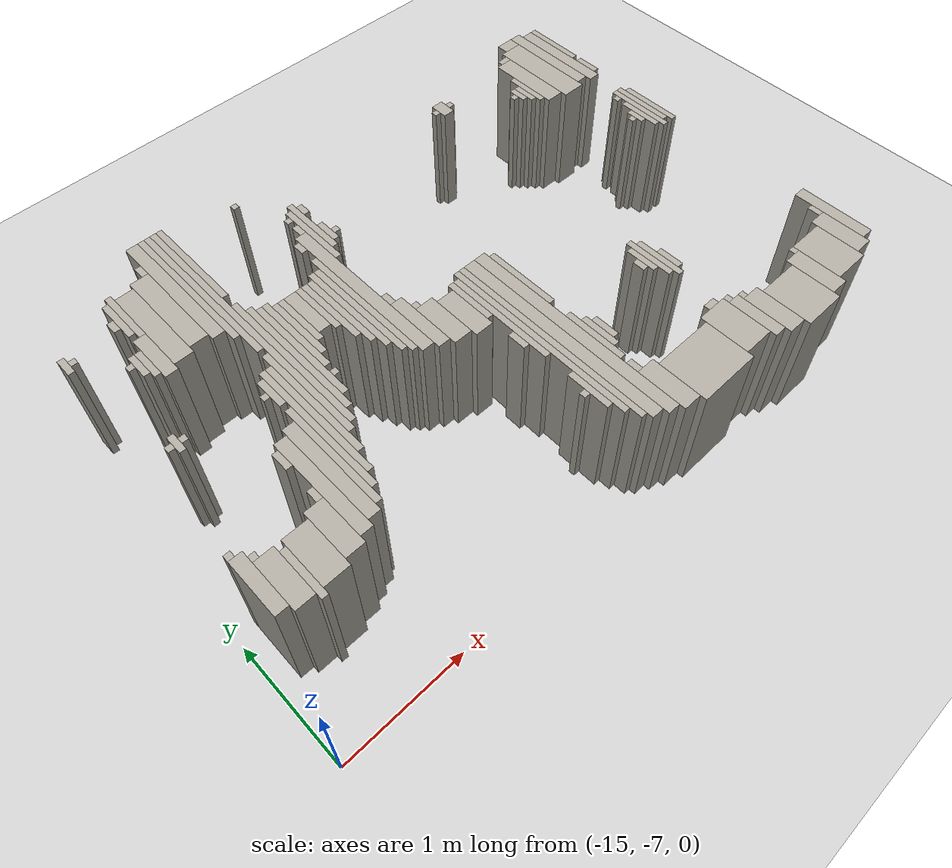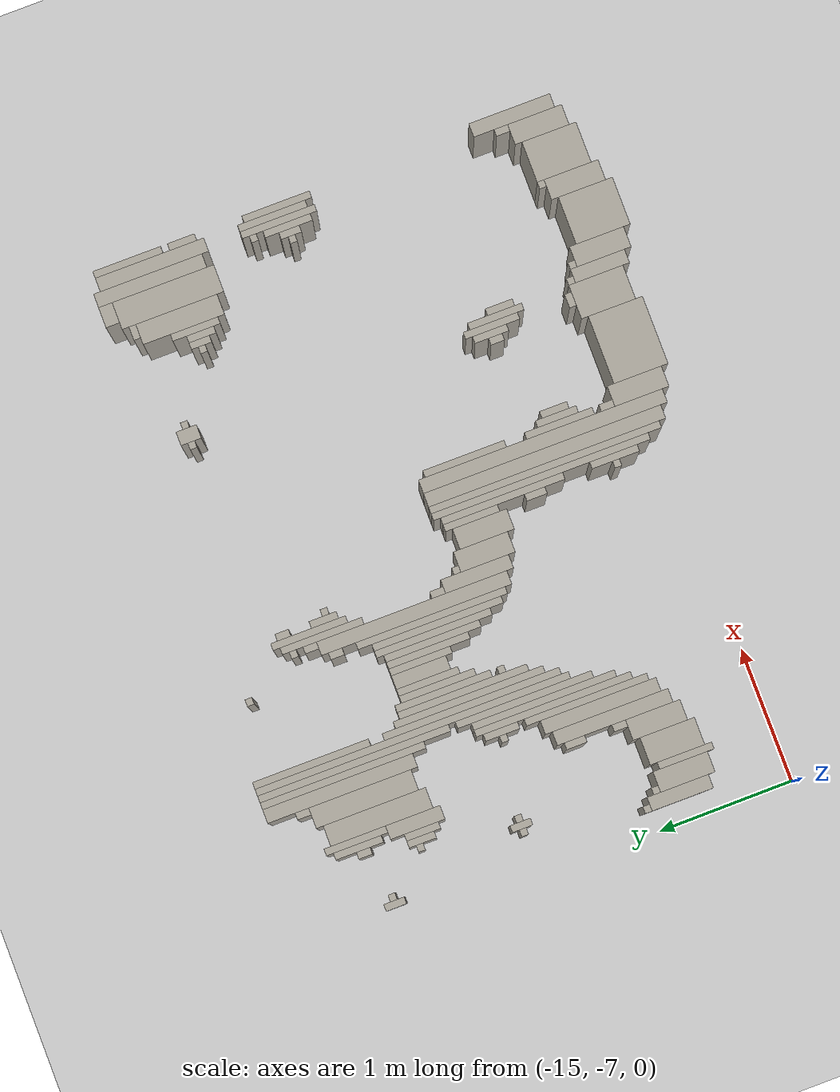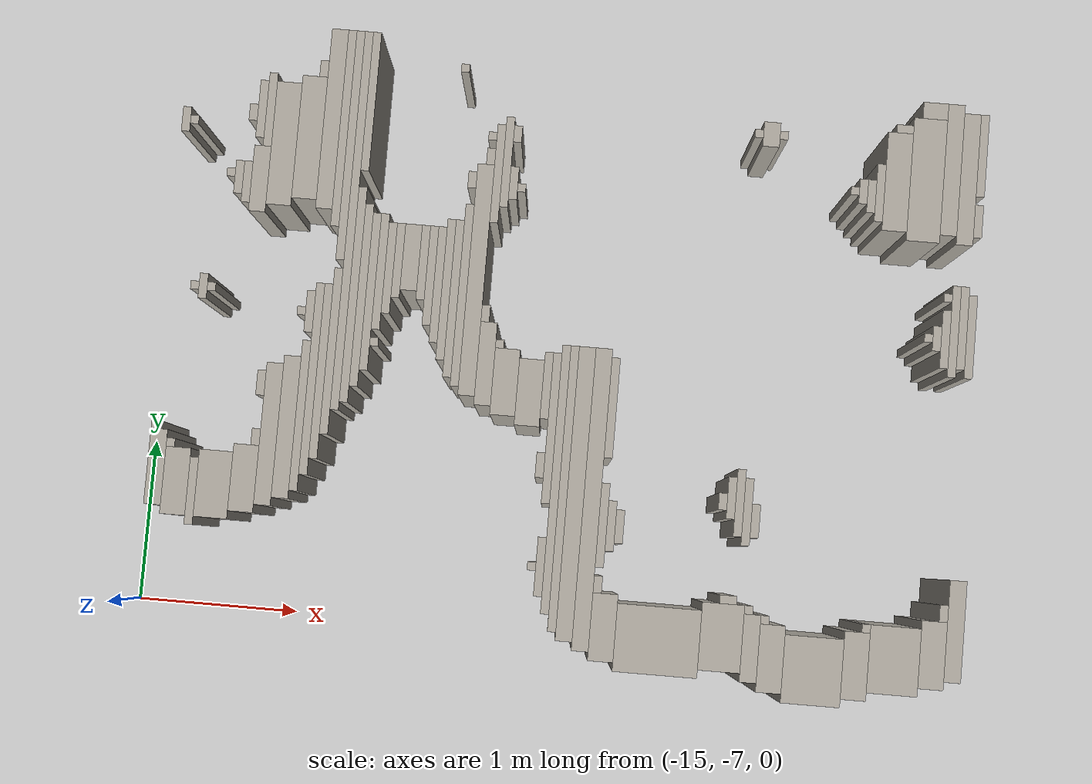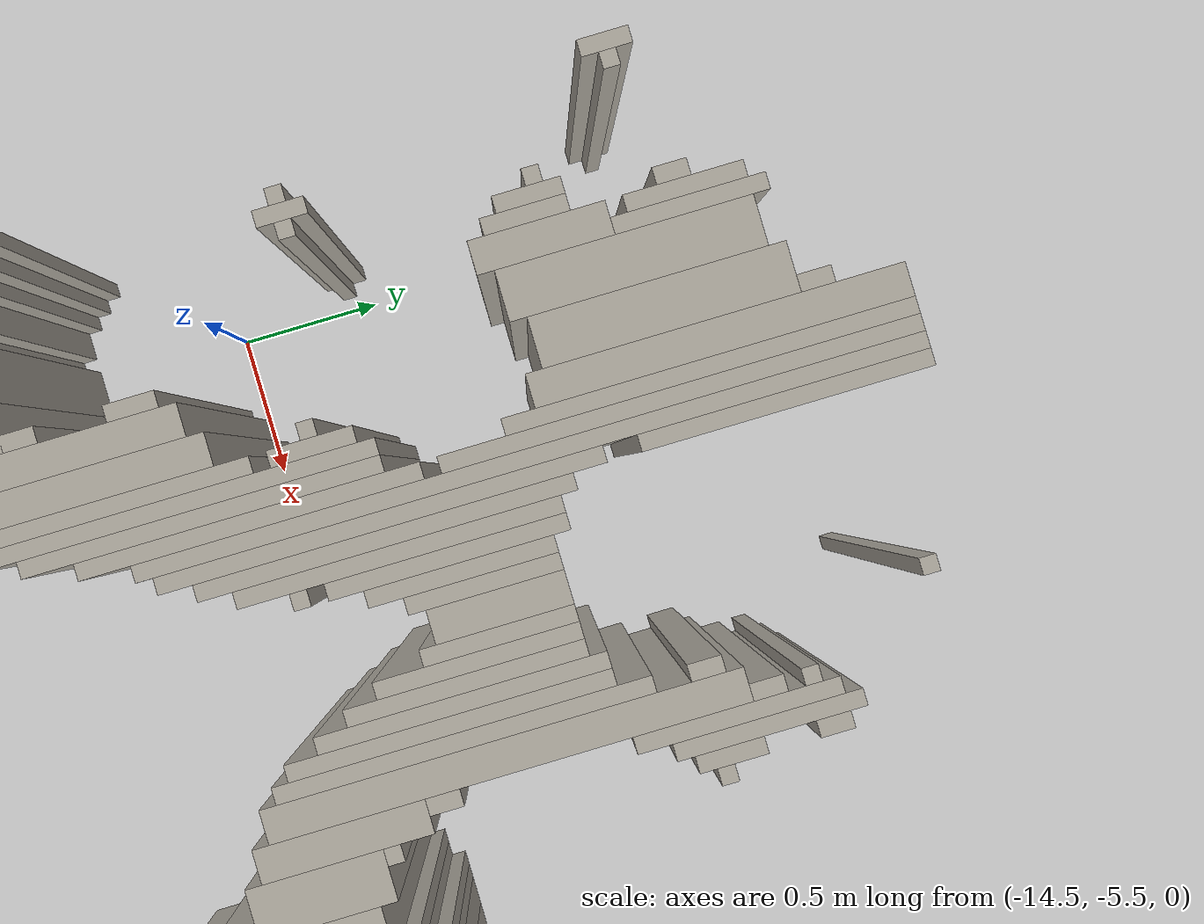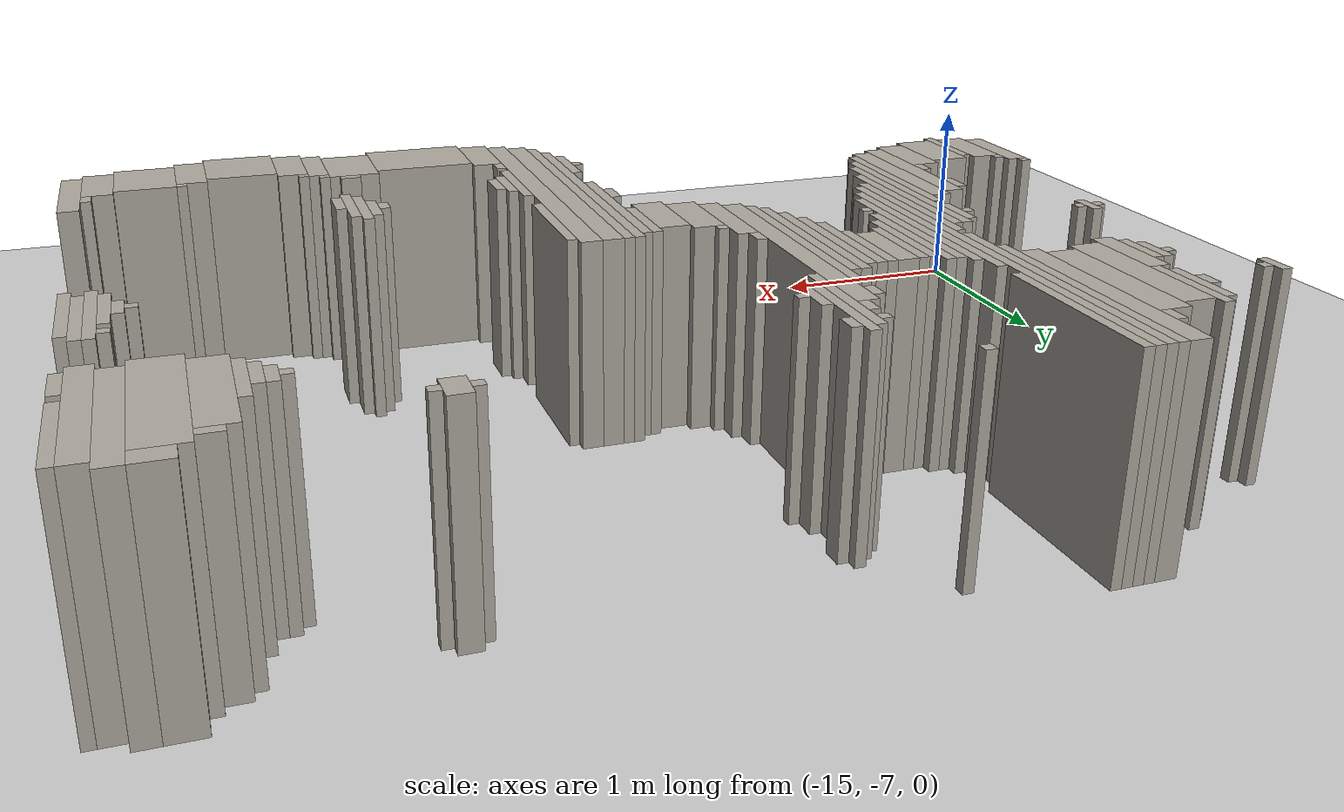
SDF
<sdf version="1.6">
 <world name="fr079_office">
  <include><uri>model://sun</uri></include>
  <include><uri>model://ground_plane</uri></include>
  <model name="fr079_office_walls">
   <static>true</static>
   <link name="w0028">
    <pose>-10.823 -7.056 0.500 0 0 0</pose>
    <collision name="c"><geometry><box><size>0.350 0.400 1.000</size></box></geometry></collision>
    <visual name="v">
     <geometry><box><size>0.350 0.400 1.000</size></box></geometry>
     <material><ambient>0.68 0.66 0.62 1</ambient><diffuse>0.68 0.66 0.62 1</diffuse></material>
    </visual>
   </link>
   <link name="w0052">
    <pose>-11.073 -7.006 0.500 0 0 0</pose>
    <collision name="c"><geometry><box><size>0.150 0.400 1.000</size></box></geometry></collision>
    <visual name="v">
     <geometry><box><size>0.150 0.400 1.000</size></box></geometry>
     <material><ambient>0.68 0.66 0.62 1</ambient><diffuse>0.68 0.66 0.62 1</diffuse></material>
    </visual>
   </link>
   <link name="w0053">
    <pose>-10.573 -7.006 0.500 0 0 0</pose>
    <collision name="c"><geometry><box><size>0.150 0.400 1.000</size></box></geometry></collision>
    <visual name="v">
     <geometry><box><size>0.150 0.400 1.000</size></box></geometry>
     <material><ambient>0.68 0.66 0.62 1</ambient><diffuse>0.68 0.66 0.62 1</diffuse></material>
    </visual>
   </link>
   <link name="w0078">
    <pose>-11.748 -6.956 0.500 0 0 0</pose>
    <collision name="c"><geometry><box><size>0.500 0.400 1.000</size></box></geometry></collision>
    <visual name="v">
     <geometry><box><size>0.500 0.400 1.000</size></box></geometry>
     <material><ambient>0.68 0.66 0.62 1</ambient><diffuse>0.68 0.66 0.62 1</diffuse></material>
    </visual>
   </link>
   <link name="w0079">
    <pose>-11.198 -6.956 0.500 0 0 0</pose>
    <collision name="c"><geometry><box><size>0.100 0.400 1.000</size></box></geometry></collision>
    <visual name="v">
     <geometry><box><size>0.100 0.400 1.000</size></box></geometry>
     <material><ambient>0.68 0.66 0.62 1</ambient><diffuse>0.68 0.66 0.62 1</diffuse></material>
    </visual>
   </link>
   <link name="w0080">
    <pose>-10.348 -6.956 0.500 0 0 0</pose>
    <collision name="c"><geometry><box><size>0.300 0.400 1.000</size></box></geometry></collision>
    <visual name="v">
     <geometry><box><size>0.300 0.400 1.000</size></box></geometry>
     <material><ambient>0.68 0.66 0.62 1</ambient><diffuse>0.68 0.66 0.62 1</diffuse></material>
    </visual>
   </link>
   <link name="w0103">
    <pose>-12.073 -6.906 0.500 0 0 0</pose>
    <collision name="c"><geometry><box><size>0.150 0.400 1.000</size></box></geometry></collision>
    <visual name="v">
     <geometry><box><size>0.150 0.400 1.000</size></box></geometry>
     <material><ambient>0.68 0.66 0.62 1</ambient><diffuse>0.68 0.66 0.62 1</diffuse></material>
    </visual>
   </link>
   <link name="w0104">
    <pose>-11.373 -6.906 0.500 0 0 0</pose>
    <collision name="c"><geometry><box><size>0.250 0.400 1.000</size></box></geometry></collision>
    <visual name="v">
     <geometry><box><size>0.250 0.400 1.000</size></box></geometry>
     <material><ambient>0.68 0.66 0.62 1</ambient><diffuse>0.68 0.66 0.62 1</diffuse></material>
    </visual>
   </link>
   <link name="w0105">
    <pose>-10.123 -6.906 0.500 0 0 0</pose>
    <collision name="c"><geometry><box><size>0.150 0.400 1.000</size></box></geometry></collision>
    <visual name="v">
     <geometry><box><size>0.150 0.400 1.000</size></box></geometry>
     <material><ambient>0.68 0.66 0.62 1</ambient><diffuse>0.68 0.66 0.62 1</diffuse></material>
    </visual>
   </link>
   <link name="w0125">
    <pose>-12.198 -6.156 0.500 0 0 0</pose>
    <collision name="c"><geometry><box><size>0.100 1.800 1.000</size></box></geometry></collision>
    <visual name="v">
     <geometry><box><size>0.100 1.800 1.000</size></box></geometry>
     <material><ambient>0.68 0.66 0.62 1</ambient><diffuse>0.68 0.66 0.62 1</diffuse></material>
    </visual>
   </link>
   <link name="w0126">
    <pose>-9.998 -6.756 0.500 0 0 0</pose>
    <collision name="c"><geometry><box><size>0.100 0.600 1.000</size></box></geometry></collision>
    <visual name="v">
     <geometry><box><size>0.100 0.600 1.000</size></box></geometry>
     <material><ambient>0.68 0.66 0.62 1</ambient><diffuse>0.68 0.66 0.62 1</diffuse></material>
    </visual>
   </link>
   <link name="w0137">
    <pose>-12.298 -6.131 0.500 0 0 0</pose>
    <collision name="c"><geometry><box><size>0.100 1.750 1.000</size></box></geometry></collision>
    <visual name="v">
     <geometry><box><size>0.100 1.750 1.000</size></box></geometry>
     <material><ambient>0.68 0.66 0.62 1</ambient><diffuse>0.68 0.66 0.62 1</diffuse></material>
    </visual>
   </link>
   <link name="w0152">
    <pose>-12.373 -6.106 0.500 0 0 0</pose>
    <collision name="c"><geometry><box><size>0.050 1.700 1.000</size></box></geometry></collision>
    <visual name="v">
     <geometry><box><size>0.050 1.700 1.000</size></box></geometry>
     <material><ambient>0.68 0.66 0.62 1</ambient><diffuse>0.68 0.66 0.62 1</diffuse></material>
    </visual>
   </link>
   <link name="w0179">
    <pose>-12.423 -6.056 0.500 0 0 0</pose>
    <collision name="c"><geometry><box><size>0.050 1.600 1.000</size></box></geometry></collision>
    <visual name="v">
     <geometry><box><size>0.050 1.600 1.000</size></box></geometry>
     <material><ambient>0.68 0.66 0.62 1</ambient><diffuse>0.68 0.66 0.62 1</diffuse></material>
    </visual>
   </link>
   <link name="w0198">
    <pose>-11.123 -6.781 0.500 0 0 0</pose>
    <collision name="c"><geometry><box><size>0.050 0.050 1.000</size></box></geometry></collision>
    <visual name="v">
     <geometry><box><size>0.050 0.050 1.000</size></box></geometry>
     <material><ambient>0.68 0.66 0.62 1</ambient><diffuse>0.68 0.66 0.62 1</diffuse></material>
    </visual>
   </link>
   <link name="w0199">
    <pose>-10.523 -6.781 0.500 0 0 0</pose>
    <collision name="c"><geometry><box><size>0.050 0.050 1.000</size></box></geometry></collision>
    <visual name="v">
     <geometry><box><size>0.050 0.050 1.000</size></box></geometry>
     <material><ambient>0.68 0.66 0.62 1</ambient><diffuse>0.68 0.66 0.62 1</diffuse></material>
    </visual>
   </link>
   <link name="w0212">
    <pose>-12.473 -6.581 0.500 0 0 0</pose>
    <collision name="c"><geometry><box><size>0.050 0.350 1.000</size></box></geometry></collision>
    <visual name="v">
     <geometry><box><size>0.050 0.350 1.000</size></box></geometry>
     <material><ambient>0.68 0.66 0.62 1</ambient><diffuse>0.68 0.66 0.62 1</diffuse></material>
    </visual>
   </link>
   <link name="w0213">
    <pose>-11.223 -6.731 0.500 0 0 0</pose>
    <collision name="c"><geometry><box><size>0.050 0.050 1.000</size></box></geometry></collision>
    <visual name="v">
     <geometry><box><size>0.050 0.050 1.000</size></box></geometry>
     <material><ambient>0.68 0.66 0.62 1</ambient><diffuse>0.68 0.66 0.62 1</diffuse></material>
    </visual>
   </link>
   <link name="w0232">
    <pose>-12.123 -6.656 0.500 0 0 0</pose>
    <collision name="c"><geometry><box><size>0.050 0.100 1.000</size></box></geometry></collision>
    <visual name="v">
     <geometry><box><size>0.050 0.100 1.000</size></box></geometry>
     <material><ambient>0.68 0.66 0.62 1</ambient><diffuse>0.68 0.66 0.62 1</diffuse></material>
    </visual>
   </link>
   <link name="w0233">
    <pose>-11.348 -6.681 0.500 0 0 0</pose>
    <collision name="c"><geometry><box><size>0.100 0.050 1.000</size></box></geometry></collision>
    <visual name="v">
     <geometry><box><size>0.100 0.050 1.000</size></box></geometry>
     <material><ambient>0.68 0.66 0.62 1</ambient><diffuse>0.68 0.66 0.62 1</diffuse></material>
    </visual>
   </link>
   <link name="w0234">
    <pose>-10.073 -6.656 0.500 0 0 0</pose>
    <collision name="c"><geometry><box><size>0.050 0.100 1.000</size></box></geometry></collision>
    <visual name="v">
     <geometry><box><size>0.050 0.100 1.000</size></box></geometry>
     <material><ambient>0.68 0.66 0.62 1</ambient><diffuse>0.68 0.66 0.62 1</diffuse></material>
    </visual>
   </link>
   <link name="w0255">
    <pose>-12.523 -6.581 0.500 0 0 0</pose>
    <collision name="c"><geometry><box><size>0.050 0.050 1.000</size></box></geometry></collision>
    <visual name="v">
     <geometry><box><size>0.050 0.050 1.000</size></box></geometry>
     <material><ambient>0.68 0.66 0.62 1</ambient><diffuse>0.68 0.66 0.62 1</diffuse></material>
    </visual>
   </link>
   <link name="w0269">
    <pose>-12.123 -6.306 0.500 0 0 0</pose>
    <collision name="c"><geometry><box><size>0.050 0.500 1.000</size></box></geometry></collision>
    <visual name="v">
     <geometry><box><size>0.050 0.500 1.000</size></box></geometry>
     <material><ambient>0.68 0.66 0.62 1</ambient><diffuse>0.68 0.66 0.62 1</diffuse></material>
    </visual>
   </link>
   <link name="w0282">
    <pose>-14.573 -6.306 0.500 0 0 0</pose>
    <collision name="c"><geometry><box><size>0.050 0.400 1.000</size></box></geometry></collision>
    <visual name="v">
     <geometry><box><size>0.050 0.400 1.000</size></box></geometry>
     <material><ambient>0.68 0.66 0.62 1</ambient><diffuse>0.68 0.66 0.62 1</diffuse></material>
    </visual>
   </link>
   <link name="w0297">
    <pose>-14.673 -6.256 0.500 0 0 0</pose>
    <collision name="c"><geometry><box><size>0.150 0.400 1.000</size></box></geometry></collision>
    <visual name="v">
     <geometry><box><size>0.150 0.400 1.000</size></box></geometry>
     <material><ambient>0.68 0.66 0.62 1</ambient><diffuse>0.68 0.66 0.62 1</diffuse></material>
    </visual>
   </link>
   <link name="w0298">
    <pose>-14.448 -6.256 0.500 0 0 0</pose>
    <collision name="c"><geometry><box><size>0.200 0.400 1.000</size></box></geometry></collision>
    <visual name="v">
     <geometry><box><size>0.200 0.400 1.000</size></box></geometry>
     <material><ambient>0.68 0.66 0.62 1</ambient><diffuse>0.68 0.66 0.62 1</diffuse></material>
    </visual>
   </link>
   <link name="w0299">
    <pose>-12.073 -6.306 0.500 0 0 0</pose>
    <collision name="c"><geometry><box><size>0.050 0.300 1.000</size></box></geometry></collision>
    <visual name="v">
     <geometry><box><size>0.050 0.300 1.000</size></box></geometry>
     <material><ambient>0.68 0.66 0.62 1</ambient><diffuse>0.68 0.66 0.62 1</diffuse></material>
    </visual>
   </link>
   <link name="w0315">
    <pose>-14.798 -6.181 0.500 0 0 0</pose>
    <collision name="c"><geometry><box><size>0.100 0.450 1.000</size></box></geometry></collision>
    <visual name="v">
     <geometry><box><size>0.100 0.450 1.000</size></box></geometry>
     <material><ambient>0.68 0.66 0.62 1</ambient><diffuse>0.68 0.66 0.62 1</diffuse></material>
    </visual>
   </link>
   <link name="w0316">
    <pose>-14.273 -6.206 0.500 0 0 0</pose>
    <collision name="c"><geometry><box><size>0.150 0.400 1.000</size></box></geometry></collision>
    <visual name="v">
     <geometry><box><size>0.150 0.400 1.000</size></box></geometry>
     <material><ambient>0.68 0.66 0.62 1</ambient><diffuse>0.68 0.66 0.62 1</diffuse></material>
    </visual>
   </link>
   <link name="w0317">
    <pose>-12.023 -6.306 0.500 0 0 0</pose>
    <collision name="c"><geometry><box><size>0.050 0.200 1.000</size></box></geometry></collision>
    <visual name="v">
     <geometry><box><size>0.050 0.200 1.000</size></box></geometry>
     <material><ambient>0.68 0.66 0.62 1</ambient><diffuse>0.68 0.66 0.62 1</diffuse></material>
    </visual>
   </link>
   <link name="w0336">
    <pose>-14.148 -5.931 0.500 0 0 0</pose>
    <collision name="c"><geometry><box><size>0.100 0.850 1.000</size></box></geometry></collision>
    <visual name="v">
     <geometry><box><size>0.100 0.850 1.000</size></box></geometry>
     <material><ambient>0.68 0.66 0.62 1</ambient><diffuse>0.68 0.66 0.62 1</diffuse></material>
    </visual>
   </link>
   <link name="w0337">
    <pose>-11.273 -6.156 0.500 0 0 0</pose>
    <collision name="c"><geometry><box><size>0.050 0.400 1.000</size></box></geometry></collision>
    <visual name="v">
     <geometry><box><size>0.050 0.400 1.000</size></box></geometry>
     <material><ambient>0.68 0.66 0.62 1</ambient><diffuse>0.68 0.66 0.62 1</diffuse></material>
    </visual>
   </link>
   <link name="w0349">
    <pose>-14.048 -5.881 0.500 0 0 0</pose>
    <collision name="c"><geometry><box><size>0.100 0.850 1.000</size></box></geometry></collision>
    <visual name="v">
     <geometry><box><size>0.100 0.850 1.000</size></box></geometry>
     <material><ambient>0.68 0.66 0.62 1</ambient><diffuse>0.68 0.66 0.62 1</diffuse></material>
    </visual>
   </link>
   <link name="w0350">
    <pose>-11.323 -6.106 0.500 0 0 0</pose>
    <collision name="c"><geometry><box><size>0.050 0.400 1.000</size></box></geometry></collision>
    <visual name="v">
     <geometry><box><size>0.050 0.400 1.000</size></box></geometry>
     <material><ambient>0.68 0.66 0.62 1</ambient><diffuse>0.68 0.66 0.62 1</diffuse></material>
    </visual>
   </link>
   <link name="w0351">
    <pose>-11.223 -6.206 0.500 0 0 0</pose>
    <collision name="c"><geometry><box><size>0.050 0.200 1.000</size></box></geometry></collision>
    <visual name="v">
     <geometry><box><size>0.050 0.200 1.000</size></box></geometry>
     <material><ambient>0.68 0.66 0.62 1</ambient><diffuse>0.68 0.66 0.62 1</diffuse></material>
    </visual>
   </link>
   <link name="w0360">
    <pose>-13.973 -5.806 0.500 0 0 0</pose>
    <collision name="c"><geometry><box><size>0.050 0.900 1.000</size></box></geometry></collision>
    <visual name="v">
     <geometry><box><size>0.050 0.900 1.000</size></box></geometry>
     <material><ambient>0.68 0.66 0.62 1</ambient><diffuse>0.68 0.66 0.62 1</diffuse></material>
    </visual>
   </link>
   <link name="w0375">
    <pose>-12.473 -5.756 0.500 0 0 0</pose>
    <collision name="c"><geometry><box><size>0.050 0.900 1.000</size></box></geometry></collision>
    <visual name="v">
     <geometry><box><size>0.050 0.900 1.000</size></box></geometry>
     <material><ambient>0.68 0.66 0.62 1</ambient><diffuse>0.68 0.66 0.62 1</diffuse></material>
    </visual>
   </link>
   <link name="w0376">
    <pose>-11.373 -6.081 0.500 0 0 0</pose>
    <collision name="c"><geometry><box><size>0.050 0.250 1.000</size></box></geometry></collision>
    <visual name="v">
     <geometry><box><size>0.050 0.250 1.000</size></box></geometry>
     <material><ambient>0.68 0.66 0.62 1</ambient><diffuse>0.68 0.66 0.62 1</diffuse></material>
    </visual>
   </link>
   <link name="w0382">
    <pose>-13.923 -5.581 0.500 0 0 0</pose>
    <collision name="c"><geometry><box><size>0.050 1.150 1.000</size></box></geometry></collision>
    <visual name="v">
     <geometry><box><size>0.050 1.150 1.000</size></box></geometry>
     <material><ambient>0.68 0.66 0.62 1</ambient><diffuse>0.68 0.66 0.62 1</diffuse></material>
    </visual>
   </link>
   <link name="w0383">
    <pose>-11.423 -6.106 0.500 0 0 0</pose>
    <collision name="c"><geometry><box><size>0.050 0.100 1.000</size></box></geometry></collision>
    <visual name="v">
     <geometry><box><size>0.050 0.100 1.000</size></box></geometry>
     <material><ambient>0.68 0.66 0.62 1</ambient><diffuse>0.68 0.66 0.62 1</diffuse></material>
    </visual>
   </link>
   <link name="w0403">
    <pose>-14.723 -6.031 0.500 0 0 0</pose>
    <collision name="c"><geometry><box><size>0.050 0.050 1.000</size></box></geometry></collision>
    <visual name="v">
     <geometry><box><size>0.050 0.050 1.000</size></box></geometry>
     <material><ambient>0.68 0.66 0.62 1</ambient><diffuse>0.68 0.66 0.62 1</diffuse></material>
    </visual>
   </link>
   <link name="w0404">
    <pose>-13.873 -5.531 0.500 0 0 0</pose>
    <collision name="c"><geometry><box><size>0.050 1.050 1.000</size></box></geometry></collision>
    <visual name="v">
     <geometry><box><size>0.050 1.050 1.000</size></box></geometry>
     <material><ambient>0.68 0.66 0.62 1</ambient><diffuse>0.68 0.66 0.62 1</diffuse></material>
    </visual>
   </link>
   <link name="w0405">
    <pose>-12.523 -5.981 0.500 0 0 0</pose>
    <collision name="c"><geometry><box><size>0.050 0.150 1.000</size></box></geometry></collision>
    <visual name="v">
     <geometry><box><size>0.050 0.150 1.000</size></box></geometry>
     <material><ambient>0.68 0.66 0.62 1</ambient><diffuse>0.68 0.66 0.62 1</diffuse></material>
    </visual>
   </link>
   <link name="w0420">
    <pose>-14.223 -5.956 0.500 0 0 0</pose>
    <collision name="c"><geometry><box><size>0.050 0.100 1.000</size></box></geometry></collision>
    <visual name="v">
     <geometry><box><size>0.050 0.100 1.000</size></box></geometry>
     <material><ambient>0.68 0.66 0.62 1</ambient><diffuse>0.68 0.66 0.62 1</diffuse></material>
    </visual>
   </link>
   <link name="w0432">
    <pose>-14.823 -5.931 0.500 0 0 0</pose>
    <collision name="c"><geometry><box><size>0.050 0.050 1.000</size></box></geometry></collision>
    <visual name="v">
     <geometry><box><size>0.050 0.050 1.000</size></box></geometry>
     <material><ambient>0.68 0.66 0.62 1</ambient><diffuse>0.68 0.66 0.62 1</diffuse></material>
    </visual>
   </link>
   <link name="w0447">
    <pose>-13.823 -5.406 0.500 0 0 0</pose>
    <collision name="c"><geometry><box><size>0.050 1.000 1.000</size></box></geometry></collision>
    <visual name="v">
     <geometry><box><size>0.050 1.000 1.000</size></box></geometry>
     <material><ambient>0.68 0.66 0.62 1</ambient><diffuse>0.68 0.66 0.62 1</diffuse></material>
    </visual>
   </link>
   <link name="w0448">
    <pose>-12.123 -5.606 0.500 0 0 0</pose>
    <collision name="c"><geometry><box><size>0.050 0.600 1.000</size></box></geometry></collision>
    <visual name="v">
     <geometry><box><size>0.050 0.600 1.000</size></box></geometry>
     <material><ambient>0.68 0.66 0.62 1</ambient><diffuse>0.68 0.66 0.62 1</diffuse></material>
    </visual>
   </link>
   <link name="w0491">
    <pose>-13.773 -4.606 0.500 0 0 0</pose>
    <collision name="c"><geometry><box><size>0.050 2.300 1.000</size></box></geometry></collision>
    <visual name="v">
     <geometry><box><size>0.050 2.300 1.000</size></box></geometry>
     <material><ambient>0.68 0.66 0.62 1</ambient><diffuse>0.68 0.66 0.62 1</diffuse></material>
    </visual>
   </link>
   <link name="w0492">
    <pose>-12.623 -5.556 0.500 0 0 0</pose>
    <collision name="c"><geometry><box><size>0.150 0.400 1.000</size></box></geometry></collision>
    <visual name="v">
     <geometry><box><size>0.150 0.400 1.000</size></box></geometry>
     <material><ambient>0.68 0.66 0.62 1</ambient><diffuse>0.68 0.66 0.62 1</diffuse></material>
    </visual>
   </link>
   <link name="w0507">
    <pose>-14.223 -5.631 0.500 0 0 0</pose>
    <collision name="c"><geometry><box><size>0.050 0.150 1.000</size></box></geometry></collision>
    <visual name="v">
     <geometry><box><size>0.050 0.150 1.000</size></box></geometry>
     <material><ambient>0.68 0.66 0.62 1</ambient><diffuse>0.68 0.66 0.62 1</diffuse></material>
    </visual>
   </link>
   <link name="w0508">
    <pose>-13.723 -5.056 0.500 0 0 0</pose>
    <collision name="c"><geometry><box><size>0.050 1.300 1.000</size></box></geometry></collision>
    <visual name="v">
     <geometry><box><size>0.050 1.300 1.000</size></box></geometry>
     <material><ambient>0.68 0.66 0.62 1</ambient><diffuse>0.68 0.66 0.62 1</diffuse></material>
    </visual>
   </link>
   <link name="w0509">
    <pose>-12.773 -5.506 0.500 0 0 0</pose>
    <collision name="c"><geometry><box><size>0.150 0.400 1.000</size></box></geometry></collision>
    <visual name="v">
     <geometry><box><size>0.150 0.400 1.000</size></box></geometry>
     <material><ambient>0.68 0.66 0.62 1</ambient><diffuse>0.68 0.66 0.62 1</diffuse></material>
    </visual>
   </link>
   <link name="w0510">
    <pose>-12.523 -5.506 0.500 0 0 0</pose>
    <collision name="c"><geometry><box><size>0.050 0.400 1.000</size></box></geometry></collision>
    <visual name="v">
     <geometry><box><size>0.050 0.400 1.000</size></box></geometry>
     <material><ambient>0.68 0.66 0.62 1</ambient><diffuse>0.68 0.66 0.62 1</diffuse></material>
    </visual>
   </link>
   <link name="w0519">
    <pose>-12.898 -5.406 0.500 0 0 0</pose>
    <collision name="c"><geometry><box><size>0.100 0.500 1.000</size></box></geometry></collision>
    <visual name="v">
     <geometry><box><size>0.100 0.500 1.000</size></box></geometry>
     <material><ambient>0.68 0.66 0.62 1</ambient><diffuse>0.68 0.66 0.62 1</diffuse></material>
    </visual>
   </link>
   <link name="w0529">
    <pose>-13.673 -5.056 0.500 0 0 0</pose>
    <collision name="c"><geometry><box><size>0.050 1.100 1.000</size></box></geometry></collision>
    <visual name="v">
     <geometry><box><size>0.050 1.100 1.000</size></box></geometry>
     <material><ambient>0.68 0.66 0.62 1</ambient><diffuse>0.68 0.66 0.62 1</diffuse></material>
    </visual>
   </link>
   <link name="w0530">
    <pose>-12.998 -4.906 0.500 0 0 0</pose>
    <collision name="c"><geometry><box><size>0.100 1.400 1.000</size></box></geometry></collision>
    <visual name="v">
     <geometry><box><size>0.100 1.400 1.000</size></box></geometry>
     <material><ambient>0.68 0.66 0.62 1</ambient><diffuse>0.68 0.66 0.62 1</diffuse></material>
    </visual>
   </link>
   <link name="w0544">
    <pose>-13.073 -5.006 0.500 0 0 0</pose>
    <collision name="c"><geometry><box><size>0.050 1.100 1.000</size></box></geometry></collision>
    <visual name="v">
     <geometry><box><size>0.050 1.100 1.000</size></box></geometry>
     <material><ambient>0.68 0.66 0.62 1</ambient><diffuse>0.68 0.66 0.62 1</diffuse></material>
    </visual>
   </link>
   <link name="w0553">
    <pose>-13.623 -5.031 0.500 0 0 0</pose>
    <collision name="c"><geometry><box><size>0.050 0.950 1.000</size></box></geometry></collision>
    <visual name="v">
     <geometry><box><size>0.050 0.950 1.000</size></box></geometry>
     <material><ambient>0.68 0.66 0.62 1</ambient><diffuse>0.68 0.66 0.62 1</diffuse></material>
    </visual>
   </link>
   <link name="w0554">
    <pose>-13.123 -5.031 0.500 0 0 0</pose>
    <collision name="c"><geometry><box><size>0.050 0.950 1.000</size></box></geometry></collision>
    <visual name="v">
     <geometry><box><size>0.050 0.950 1.000</size></box></geometry>
     <material><ambient>0.68 0.66 0.62 1</ambient><diffuse>0.68 0.66 0.62 1</diffuse></material>
    </visual>
   </link>
   <link name="w0573">
    <pose>-13.173 -4.981 0.500 0 0 0</pose>
    <collision name="c"><geometry><box><size>0.050 0.850 1.000</size></box></geometry></collision>
    <visual name="v">
     <geometry><box><size>0.050 0.850 1.000</size></box></geometry>
     <material><ambient>0.68 0.66 0.62 1</ambient><diffuse>0.68 0.66 0.62 1</diffuse></material>
    </visual>
   </link>
   <link name="w0586">
    <pose>-13.573 -5.331 0.500 0 0 0</pose>
    <collision name="c"><geometry><box><size>0.050 0.050 1.000</size></box></geometry></collision>
    <visual name="v">
     <geometry><box><size>0.050 0.050 1.000</size></box></geometry>
     <material><ambient>0.68 0.66 0.62 1</ambient><diffuse>0.68 0.66 0.62 1</diffuse></material>
    </visual>
   </link>
   <link name="w0599">
    <pose>-13.973 -5.181 0.500 0 0 0</pose>
    <collision name="c"><geometry><box><size>0.050 0.250 1.000</size></box></geometry></collision>
    <visual name="v">
     <geometry><box><size>0.050 0.250 1.000</size></box></geometry>
     <material><ambient>0.68 0.66 0.62 1</ambient><diffuse>0.68 0.66 0.62 1</diffuse></material>
    </visual>
   </link>
   <link name="w0600">
    <pose>-13.223 -4.956 0.500 0 0 0</pose>
    <collision name="c"><geometry><box><size>0.050 0.700 1.000</size></box></geometry></collision>
    <visual name="v">
     <geometry><box><size>0.050 0.700 1.000</size></box></geometry>
     <material><ambient>0.68 0.66 0.62 1</ambient><diffuse>0.68 0.66 0.62 1</diffuse></material>
    </visual>
   </link>
   <link name="w0601">
    <pose>-12.823 -5.281 0.500 0 0 0</pose>
    <collision name="c"><geometry><box><size>0.050 0.050 1.000</size></box></geometry></collision>
    <visual name="v">
     <geometry><box><size>0.050 0.050 1.000</size></box></geometry>
     <material><ambient>0.68 0.66 0.62 1</ambient><diffuse>0.68 0.66 0.62 1</diffuse></material>
    </visual>
   </link>
   <link name="w0612">
    <pose>-13.573 -4.906 0.500 0 0 0</pose>
    <collision name="c"><geometry><box><size>0.050 0.700 1.000</size></box></geometry></collision>
    <visual name="v">
     <geometry><box><size>0.050 0.700 1.000</size></box></geometry>
     <material><ambient>0.68 0.66 0.62 1</ambient><diffuse>0.68 0.66 0.62 1</diffuse></material>
    </visual>
   </link>
   <link name="w0613">
    <pose>-10.123 -4.981 0.500 0 0 0</pose>
    <collision name="c"><geometry><box><size>0.050 0.550 1.000</size></box></geometry></collision>
    <visual name="v">
     <geometry><box><size>0.050 0.550 1.000</size></box></geometry>
     <material><ambient>0.68 0.66 0.62 1</ambient><diffuse>0.68 0.66 0.62 1</diffuse></material>
    </visual>
   </link>
   <link name="w0614">
    <pose>-10.023 -5.006 0.500 0 0 0</pose>
    <collision name="c"><geometry><box><size>0.050 0.500 1.000</size></box></geometry></collision>
    <visual name="v">
     <geometry><box><size>0.050 0.500 1.000</size></box></geometry>
     <material><ambient>0.68 0.66 0.62 1</ambient><diffuse>0.68 0.66 0.62 1</diffuse></material>
    </visual>
   </link>
   <link name="w0628">
    <pose>-14.023 -5.181 0.500 0 0 0</pose>
    <collision name="c"><geometry><box><size>0.050 0.050 1.000</size></box></geometry></collision>
    <visual name="v">
     <geometry><box><size>0.050 0.050 1.000</size></box></geometry>
     <material><ambient>0.68 0.66 0.62 1</ambient><diffuse>0.68 0.66 0.62 1</diffuse></material>
    </visual>
   </link>
   <link name="w0629">
    <pose>-13.273 -4.906 0.500 0 0 0</pose>
    <collision name="c"><geometry><box><size>0.050 0.600 1.000</size></box></geometry></collision>
    <visual name="v">
     <geometry><box><size>0.050 0.600 1.000</size></box></geometry>
     <material><ambient>0.68 0.66 0.62 1</ambient><diffuse>0.68 0.66 0.62 1</diffuse></material>
    </visual>
   </link>
   <link name="w0630">
    <pose>-10.173 -5.031 0.500 0 0 0</pose>
    <collision name="c"><geometry><box><size>0.050 0.350 1.000</size></box></geometry></collision>
    <visual name="v">
     <geometry><box><size>0.050 0.350 1.000</size></box></geometry>
     <material><ambient>0.68 0.66 0.62 1</ambient><diffuse>0.68 0.66 0.62 1</diffuse></material>
    </visual>
   </link>
   <link name="w0631">
    <pose>-10.073 -4.956 0.500 0 0 0</pose>
    <collision name="c"><geometry><box><size>0.050 0.500 1.000</size></box></geometry></collision>
    <visual name="v">
     <geometry><box><size>0.050 0.500 1.000</size></box></geometry>
     <material><ambient>0.68 0.66 0.62 1</ambient><diffuse>0.68 0.66 0.62 1</diffuse></material>
    </visual>
   </link>
   <link name="w0646">
    <pose>-14.623 -5.081 0.500 0 0 0</pose>
    <collision name="c"><geometry><box><size>0.050 0.150 1.000</size></box></geometry></collision>
    <visual name="v">
     <geometry><box><size>0.050 0.150 1.000</size></box></geometry>
     <material><ambient>0.68 0.66 0.62 1</ambient><diffuse>0.68 0.66 0.62 1</diffuse></material>
    </visual>
   </link>
   <link name="w0647">
    <pose>-13.523 -4.881 0.500 0 0 0</pose>
    <collision name="c"><geometry><box><size>0.050 0.550 1.000</size></box></geometry></collision>
    <visual name="v">
     <geometry><box><size>0.050 0.550 1.000</size></box></geometry>
     <material><ambient>0.68 0.66 0.62 1</ambient><diffuse>0.68 0.66 0.62 1</diffuse></material>
    </visual>
   </link>
   <link name="w0648">
    <pose>-12.923 -5.106 0.500 0 0 0</pose>
    <collision name="c"><geometry><box><size>0.050 0.100 1.000</size></box></geometry></collision>
    <visual name="v">
     <geometry><box><size>0.050 0.100 1.000</size></box></geometry>
     <material><ambient>0.68 0.66 0.62 1</ambient><diffuse>0.68 0.66 0.62 1</diffuse></material>
    </visual>
   </link>
   <link name="w0657">
    <pose>-14.673 -5.081 0.500 0 0 0</pose>
    <collision name="c"><geometry><box><size>0.050 0.050 1.000</size></box></geometry></collision>
    <visual name="v">
     <geometry><box><size>0.050 0.050 1.000</size></box></geometry>
     <material><ambient>0.68 0.66 0.62 1</ambient><diffuse>0.68 0.66 0.62 1</diffuse></material>
    </visual>
   </link>
   <link name="w0658">
    <pose>-14.573 -5.081 0.500 0 0 0</pose>
    <collision name="c"><geometry><box><size>0.050 0.050 1.000</size></box></geometry></collision>
    <visual name="v">
     <geometry><box><size>0.050 0.050 1.000</size></box></geometry>
     <material><ambient>0.68 0.66 0.62 1</ambient><diffuse>0.68 0.66 0.62 1</diffuse></material>
    </visual>
   </link>
   <link name="w0659">
    <pose>-10.223 -5.031 0.500 0 0 0</pose>
    <collision name="c"><geometry><box><size>0.050 0.150 1.000</size></box></geometry></collision>
    <visual name="v">
     <geometry><box><size>0.050 0.150 1.000</size></box></geometry>
     <material><ambient>0.68 0.66 0.62 1</ambient><diffuse>0.68 0.66 0.62 1</diffuse></material>
    </visual>
   </link>
   <link name="w0670">
    <pose>-13.473 -4.831 0.500 0 0 0</pose>
    <collision name="c"><geometry><box><size>0.050 0.450 1.000</size></box></geometry></collision>
    <visual name="v">
     <geometry><box><size>0.050 0.450 1.000</size></box></geometry>
     <material><ambient>0.68 0.66 0.62 1</ambient><diffuse>0.68 0.66 0.62 1</diffuse></material>
    </visual>
   </link>
   <link name="w0671">
    <pose>-13.323 -4.831 0.500 0 0 0</pose>
    <collision name="c"><geometry><box><size>0.050 0.450 1.000</size></box></geometry></collision>
    <visual name="v">
     <geometry><box><size>0.050 0.450 1.000</size></box></geometry>
     <material><ambient>0.68 0.66 0.62 1</ambient><diffuse>0.68 0.66 0.62 1</diffuse></material>
    </visual>
   </link>
   <link name="w0672">
    <pose>-10.273 -5.031 0.500 0 0 0</pose>
    <collision name="c"><geometry><box><size>0.050 0.050 1.000</size></box></geometry></collision>
    <visual name="v">
     <geometry><box><size>0.050 0.050 1.000</size></box></geometry>
     <material><ambient>0.68 0.66 0.62 1</ambient><diffuse>0.68 0.66 0.62 1</diffuse></material>
    </visual>
   </link>
   <link name="w0680">
    <pose>-13.398 -4.806 0.500 0 0 0</pose>
    <collision name="c"><geometry><box><size>0.100 0.400 1.000</size></box></geometry></collision>
    <visual name="v">
     <geometry><box><size>0.100 0.400 1.000</size></box></geometry>
     <material><ambient>0.68 0.66 0.62 1</ambient><diffuse>0.68 0.66 0.62 1</diffuse></material>
    </visual>
   </link>
   <link name="w0713">
    <pose>-13.823 -4.156 0.500 0 0 0</pose>
    <collision name="c"><geometry><box><size>0.050 1.400 1.000</size></box></geometry></collision>
    <visual name="v">
     <geometry><box><size>0.050 1.400 1.000</size></box></geometry>
     <material><ambient>0.68 0.66 0.62 1</ambient><diffuse>0.68 0.66 0.62 1</diffuse></material>
    </visual>
   </link>
   <link name="w0726">
    <pose>-10.173 -4.781 0.500 0 0 0</pose>
    <collision name="c"><geometry><box><size>0.050 0.050 1.000</size></box></geometry></collision>
    <visual name="v">
     <geometry><box><size>0.050 0.050 1.000</size></box></geometry>
     <material><ambient>0.68 0.66 0.62 1</ambient><diffuse>0.68 0.66 0.62 1</diffuse></material>
    </visual>
   </link>
   <link name="w0765">
    <pose>-13.873 -4.056 0.500 0 0 0</pose>
    <collision name="c"><geometry><box><size>0.050 1.200 1.000</size></box></geometry></collision>
    <visual name="v">
     <geometry><box><size>0.050 1.200 1.000</size></box></geometry>
     <material><ambient>0.68 0.66 0.62 1</ambient><diffuse>0.68 0.66 0.62 1</diffuse></material>
    </visual>
   </link>
   <link name="w0785">
    <pose>-14.348 -4.406 0.500 0 0 0</pose>
    <collision name="c"><geometry><box><size>0.100 0.400 1.000</size></box></geometry></collision>
    <visual name="v">
     <geometry><box><size>0.100 0.400 1.000</size></box></geometry>
     <material><ambient>0.68 0.66 0.62 1</ambient><diffuse>0.68 0.66 0.62 1</diffuse></material>
    </visual>
   </link>
   <link name="w0796">
    <pose>-14.423 -4.431 0.500 0 0 0</pose>
    <collision name="c"><geometry><box><size>0.050 0.250 1.000</size></box></geometry></collision>
    <visual name="v">
     <geometry><box><size>0.050 0.250 1.000</size></box></geometry>
     <material><ambient>0.68 0.66 0.62 1</ambient><diffuse>0.68 0.66 0.62 1</diffuse></material>
    </visual>
   </link>
   <link name="w0797">
    <pose>-14.223 -4.181 0.500 0 0 0</pose>
    <collision name="c"><geometry><box><size>0.150 0.750 1.000</size></box></geometry></collision>
    <visual name="v">
     <geometry><box><size>0.150 0.750 1.000</size></box></geometry>
     <material><ambient>0.68 0.66 0.62 1</ambient><diffuse>0.68 0.66 0.62 1</diffuse></material>
    </visual>
   </link>
   <link name="w0798">
    <pose>-13.948 -4.006 0.500 0 0 0</pose>
    <collision name="c"><geometry><box><size>0.100 1.100 1.000</size></box></geometry></collision>
    <visual name="v">
     <geometry><box><size>0.100 1.100 1.000</size></box></geometry>
     <material><ambient>0.68 0.66 0.62 1</ambient><diffuse>0.68 0.66 0.62 1</diffuse></material>
    </visual>
   </link>
   <link name="w0799">
    <pose>-12.923 -4.256 0.500 0 0 0</pose>
    <collision name="c"><geometry><box><size>0.050 0.600 1.000</size></box></geometry></collision>
    <visual name="v">
     <geometry><box><size>0.050 0.600 1.000</size></box></geometry>
     <material><ambient>0.68 0.66 0.62 1</ambient><diffuse>0.68 0.66 0.62 1</diffuse></material>
    </visual>
   </link>
   <link name="w0817">
    <pose>-14.473 -4.406 0.500 0 0 0</pose>
    <collision name="c"><geometry><box><size>0.050 0.200 1.000</size></box></geometry></collision>
    <visual name="v">
     <geometry><box><size>0.050 0.200 1.000</size></box></geometry>
     <material><ambient>0.68 0.66 0.62 1</ambient><diffuse>0.68 0.66 0.62 1</diffuse></material>
    </visual>
   </link>
   <link name="w0818">
    <pose>-14.073 -4.131 0.500 0 0 0</pose>
    <collision name="c"><geometry><box><size>0.150 0.750 1.000</size></box></geometry></collision>
    <visual name="v">
     <geometry><box><size>0.150 0.750 1.000</size></box></geometry>
     <material><ambient>0.68 0.66 0.62 1</ambient><diffuse>0.68 0.66 0.62 1</diffuse></material>
    </visual>
   </link>
   <link name="w0830">
    <pose>-12.873 -4.181 0.500 0 0 0</pose>
    <collision name="c"><geometry><box><size>0.050 0.550 1.000</size></box></geometry></collision>
    <visual name="v">
     <geometry><box><size>0.050 0.550 1.000</size></box></geometry>
     <material><ambient>0.68 0.66 0.62 1</ambient><diffuse>0.68 0.66 0.62 1</diffuse></material>
    </visual>
   </link>
   <link name="w0831">
    <pose>-10.348 -4.081 0.500 0 0 0</pose>
    <collision name="c"><geometry><box><size>0.200 0.750 1.000</size></box></geometry></collision>
    <visual name="v">
     <geometry><box><size>0.200 0.750 1.000</size></box></geometry>
     <material><ambient>0.68 0.66 0.62 1</ambient><diffuse>0.68 0.66 0.62 1</diffuse></material>
    </visual>
   </link>
   <link name="w0832">
    <pose>-10.098 -4.056 0.500 0 0 0</pose>
    <collision name="c"><geometry><box><size>0.100 0.800 1.000</size></box></geometry></collision>
    <visual name="v">
     <geometry><box><size>0.100 0.800 1.000</size></box></geometry>
     <material><ambient>0.68 0.66 0.62 1</ambient><diffuse>0.68 0.66 0.62 1</diffuse></material>
    </visual>
   </link>
   <link name="w0844">
    <pose>-14.523 -4.381 0.500 0 0 0</pose>
    <collision name="c"><geometry><box><size>0.050 0.050 1.000</size></box></geometry></collision>
    <visual name="v">
     <geometry><box><size>0.050 0.050 1.000</size></box></geometry>
     <material><ambient>0.68 0.66 0.62 1</ambient><diffuse>0.68 0.66 0.62 1</diffuse></material>
    </visual>
   </link>
   <link name="w0845">
    <pose>-12.823 -4.306 0.500 0 0 0</pose>
    <collision name="c"><geometry><box><size>0.050 0.200 1.000</size></box></geometry></collision>
    <visual name="v">
     <geometry><box><size>0.050 0.200 1.000</size></box></geometry>
     <material><ambient>0.68 0.66 0.62 1</ambient><diffuse>0.68 0.66 0.62 1</diffuse></material>
    </visual>
   </link>
   <link name="w0846">
    <pose>-10.523 -4.106 0.500 0 0 0</pose>
    <collision name="c"><geometry><box><size>0.150 0.600 1.000</size></box></geometry></collision>
    <visual name="v">
     <geometry><box><size>0.150 0.600 1.000</size></box></geometry>
     <material><ambient>0.68 0.66 0.62 1</ambient><diffuse>0.68 0.66 0.62 1</diffuse></material>
    </visual>
   </link>
   <link name="w0847">
    <pose>-10.198 -4.006 0.500 0 0 0</pose>
    <collision name="c"><geometry><box><size>0.100 0.800 1.000</size></box></geometry></collision>
    <visual name="v">
     <geometry><box><size>0.100 0.800 1.000</size></box></geometry>
     <material><ambient>0.68 0.66 0.62 1</ambient><diffuse>0.68 0.66 0.62 1</diffuse></material>
    </visual>
   </link>
   <link name="w0848">
    <pose>-10.023 -4.306 0.500 0 0 0</pose>
    <collision name="c"><geometry><box><size>0.050 0.200 1.000</size></box></geometry></collision>
    <visual name="v">
     <geometry><box><size>0.050 0.200 1.000</size></box></geometry>
     <material><ambient>0.68 0.66 0.62 1</ambient><diffuse>0.68 0.66 0.62 1</diffuse></material>
    </visual>
   </link>
   <link name="w0859">
    <pose>-13.073 -4.306 0.500 0 0 0</pose>
    <collision name="c"><geometry><box><size>0.050 0.100 1.000</size></box></geometry></collision>
    <visual name="v">
     <geometry><box><size>0.050 0.100 1.000</size></box></geometry>
     <material><ambient>0.68 0.66 0.62 1</ambient><diffuse>0.68 0.66 0.62 1</diffuse></material>
    </visual>
   </link>
   <link name="w0860">
    <pose>-12.773 -4.331 0.500 0 0 0</pose>
    <collision name="c"><geometry><box><size>0.050 0.050 1.000</size></box></geometry></collision>
    <visual name="v">
     <geometry><box><size>0.050 0.050 1.000</size></box></geometry>
     <material><ambient>0.68 0.66 0.62 1</ambient><diffuse>0.68 0.66 0.62 1</diffuse></material>
    </visual>
   </link>
   <link name="w0861">
    <pose>-10.623 -4.181 0.500 0 0 0</pose>
    <collision name="c"><geometry><box><size>0.050 0.350 1.000</size></box></geometry></collision>
    <visual name="v">
     <geometry><box><size>0.050 0.350 1.000</size></box></geometry>
     <material><ambient>0.68 0.66 0.62 1</ambient><diffuse>0.68 0.66 0.62 1</diffuse></material>
    </visual>
   </link>
   <link name="w0874">
    <pose>-13.723 -3.881 0.500 0 0 0</pose>
    <collision name="c"><geometry><box><size>0.050 0.850 1.000</size></box></geometry></collision>
    <visual name="v">
     <geometry><box><size>0.050 0.850 1.000</size></box></geometry>
     <material><ambient>0.68 0.66 0.62 1</ambient><diffuse>0.68 0.66 0.62 1</diffuse></material>
    </visual>
   </link>
   <link name="w0875">
    <pose>-10.673 -4.206 0.500 0 0 0</pose>
    <collision name="c"><geometry><box><size>0.050 0.200 1.000</size></box></geometry></collision>
    <visual name="v">
     <geometry><box><size>0.050 0.200 1.000</size></box></geometry>
     <material><ambient>0.68 0.66 0.62 1</ambient><diffuse>0.68 0.66 0.62 1</diffuse></material>
    </visual>
   </link>
   <link name="w0887">
    <pose>-10.723 -4.181 0.500 0 0 0</pose>
    <collision name="c"><geometry><box><size>0.050 0.150 1.000</size></box></geometry></collision>
    <visual name="v">
     <geometry><box><size>0.050 0.150 1.000</size></box></geometry>
     <material><ambient>0.68 0.66 0.62 1</ambient><diffuse>0.68 0.66 0.62 1</diffuse></material>
    </visual>
   </link>
   <link name="w0904">
    <pose>-14.323 -3.981 0.500 0 0 0</pose>
    <collision name="c"><geometry><box><size>0.050 0.450 1.000</size></box></geometry></collision>
    <visual name="v">
     <geometry><box><size>0.050 0.450 1.000</size></box></geometry>
     <material><ambient>0.68 0.66 0.62 1</ambient><diffuse>0.68 0.66 0.62 1</diffuse></material>
    </visual>
   </link>
   <link name="w0905">
    <pose>-12.973 -4.156 0.500 0 0 0</pose>
    <collision name="c"><geometry><box><size>0.050 0.100 1.000</size></box></geometry></collision>
    <visual name="v">
     <geometry><box><size>0.050 0.100 1.000</size></box></geometry>
     <material><ambient>0.68 0.66 0.62 1</ambient><diffuse>0.68 0.66 0.62 1</diffuse></material>
    </visual>
   </link>
   <link name="w0906">
    <pose>-10.773 -4.181 0.500 0 0 0</pose>
    <collision name="c"><geometry><box><size>0.050 0.050 1.000</size></box></geometry></collision>
    <visual name="v">
     <geometry><box><size>0.050 0.050 1.000</size></box></geometry>
     <material><ambient>0.68 0.66 0.62 1</ambient><diffuse>0.68 0.66 0.62 1</diffuse></material>
    </visual>
   </link>
   <link name="w0922">
    <pose>-14.823 -4.081 0.500 0 0 0</pose>
    <collision name="c"><geometry><box><size>0.050 0.150 1.000</size></box></geometry></collision>
    <visual name="v">
     <geometry><box><size>0.050 0.150 1.000</size></box></geometry>
     <material><ambient>0.68 0.66 0.62 1</ambient><diffuse>0.68 0.66 0.62 1</diffuse></material>
    </visual>
   </link>
   <link name="w0923">
    <pose>-14.373 -3.981 0.500 0 0 0</pose>
    <collision name="c"><geometry><box><size>0.050 0.350 1.000</size></box></geometry></collision>
    <visual name="v">
     <geometry><box><size>0.050 0.350 1.000</size></box></geometry>
     <material><ambient>0.68 0.66 0.62 1</ambient><diffuse>0.68 0.66 0.62 1</diffuse></material>
    </visual>
   </link>
   <link name="w0924">
    <pose>-10.023 -3.906 0.500 0 0 0</pose>
    <collision name="c"><geometry><box><size>0.050 0.500 1.000</size></box></geometry></collision>
    <visual name="v">
     <geometry><box><size>0.050 0.500 1.000</size></box></geometry>
     <material><ambient>0.68 0.66 0.62 1</ambient><diffuse>0.68 0.66 0.62 1</diffuse></material>
    </visual>
   </link>
   <link name="w0941">
    <pose>-14.773 -4.081 0.500 0 0 0</pose>
    <collision name="c"><geometry><box><size>0.050 0.050 1.000</size></box></geometry></collision>
    <visual name="v">
     <geometry><box><size>0.050 0.050 1.000</size></box></geometry>
     <material><ambient>0.68 0.66 0.62 1</ambient><diffuse>0.68 0.66 0.62 1</diffuse></material>
    </visual>
   </link>
   <link name="w0951">
    <pose>-14.423 -4.006 0.500 0 0 0</pose>
    <collision name="c"><geometry><box><size>0.050 0.100 1.000</size></box></geometry></collision>
    <visual name="v">
     <geometry><box><size>0.050 0.100 1.000</size></box></geometry>
     <material><ambient>0.68 0.66 0.62 1</ambient><diffuse>0.68 0.66 0.62 1</diffuse></material>
    </visual>
   </link>
   <link name="w0952">
    <pose>-12.973 -4.031 0.500 0 0 0</pose>
    <collision name="c"><geometry><box><size>0.050 0.050 1.000</size></box></geometry></collision>
    <visual name="v">
     <geometry><box><size>0.050 0.050 1.000</size></box></geometry>
     <material><ambient>0.68 0.66 0.62 1</ambient><diffuse>0.68 0.66 0.62 1</diffuse></material>
    </visual>
   </link>
   <link name="w0953">
    <pose>-12.823 -4.006 0.500 0 0 0</pose>
    <collision name="c"><geometry><box><size>0.050 0.100 1.000</size></box></geometry></collision>
    <visual name="v">
     <geometry><box><size>0.050 0.100 1.000</size></box></geometry>
     <material><ambient>0.68 0.66 0.62 1</ambient><diffuse>0.68 0.66 0.62 1</diffuse></material>
    </visual>
   </link>
   <link name="w0976">
    <pose>-11.298 -3.881 0.500 0 0 0</pose>
    <collision name="c"><geometry><box><size>0.100 0.150 1.000</size></box></geometry></collision>
    <visual name="v">
     <geometry><box><size>0.100 0.150 1.000</size></box></geometry>
     <material><ambient>0.68 0.66 0.62 1</ambient><diffuse>0.68 0.66 0.62 1</diffuse></material>
    </visual>
   </link>
   <link name="w0990">
    <pose>-11.373 -3.881 0.500 0 0 0</pose>
    <collision name="c"><geometry><box><size>0.050 0.050 1.000</size></box></geometry></collision>
    <visual name="v">
     <geometry><box><size>0.050 0.050 1.000</size></box></geometry>
     <material><ambient>0.68 0.66 0.62 1</ambient><diffuse>0.68 0.66 0.62 1</diffuse></material>
    </visual>
   </link>
   <link name="w0991">
    <pose>-11.223 -3.881 0.500 0 0 0</pose>
    <collision name="c"><geometry><box><size>0.050 0.050 1.000</size></box></geometry></collision>
    <visual name="v">
     <geometry><box><size>0.050 0.050 1.000</size></box></geometry>
     <material><ambient>0.68 0.66 0.62 1</ambient><diffuse>0.68 0.66 0.62 1</diffuse></material>
    </visual>
   </link>
   <link name="w1015">
    <pose>-10.498 -3.781 0.500 0 0 0</pose>
    <collision name="c"><geometry><box><size>0.100 0.050 1.000</size></box></geometry></collision>
    <visual name="v">
     <geometry><box><size>0.100 0.050 1.000</size></box></geometry>
     <material><ambient>0.68 0.66 0.62 1</ambient><diffuse>0.68 0.66 0.62 1</diffuse></material>
    </visual>
   </link>
   <link name="w1026">
    <pose>-14.023 -3.706 0.500 0 0 0</pose>
    <collision name="c"><geometry><box><size>0.050 0.100 1.000</size></box></geometry></collision>
    <visual name="v">
     <geometry><box><size>0.050 0.100 1.000</size></box></geometry>
     <material><ambient>0.68 0.66 0.62 1</ambient><diffuse>0.68 0.66 0.62 1</diffuse></material>
    </visual>
   </link>
   <link name="w1041">
    <pose>-10.323 -3.656 0.500 0 0 0</pose>
    <collision name="c"><geometry><box><size>0.150 0.100 1.000</size></box></geometry></collision>
    <visual name="v">
     <geometry><box><size>0.150 0.100 1.000</size></box></geometry>
     <material><ambient>0.68 0.66 0.62 1</ambient><diffuse>0.68 0.66 0.62 1</diffuse></material>
    </visual>
   </link>
   <link name="w1053">
    <pose>-13.173 -3.631 0.500 0 0 0</pose>
    <collision name="c"><geometry><box><size>0.050 0.050 1.000</size></box></geometry></collision>
    <visual name="v">
     <geometry><box><size>0.050 0.050 1.000</size></box></geometry>
     <material><ambient>0.68 0.66 0.62 1</ambient><diffuse>0.68 0.66 0.62 1</diffuse></material>
    </visual>
   </link>
  </model>
 </world>
</sdf>
